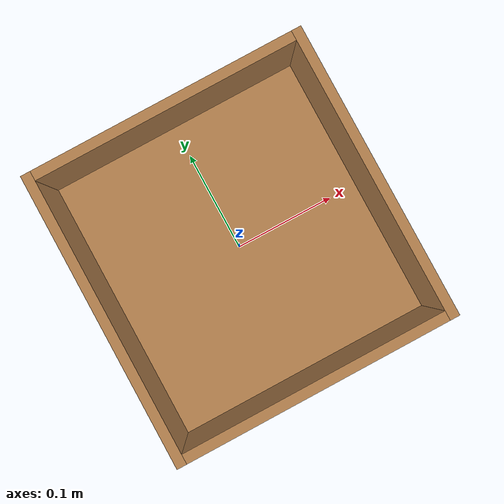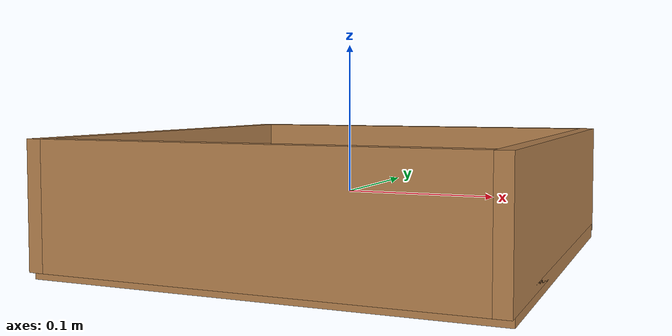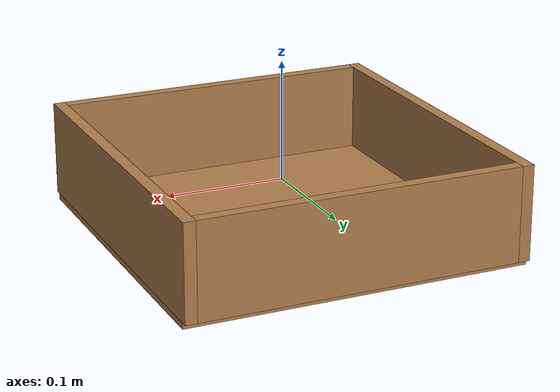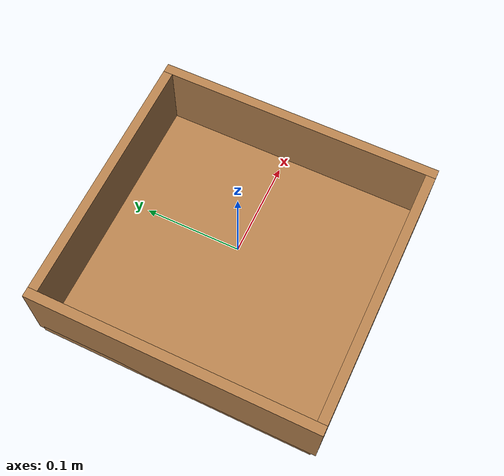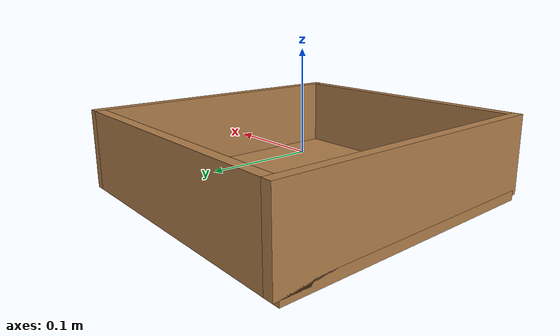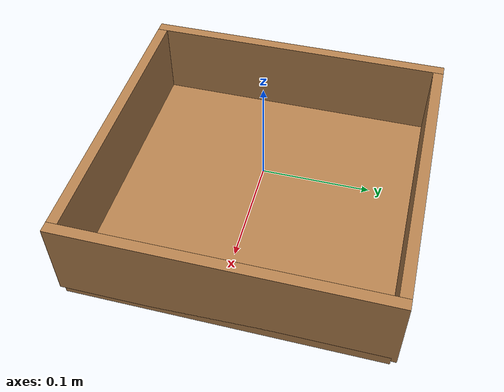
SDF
<?xml version="1.0"?>
<sdf version="1.4">
    <model name="my_boxx">

      <link name="box_1">
              <pose>0 0.145 0 0 0 0</pose>

                  <collision name='collision'>
                    <geometry>
                      <box>
                        <size>0.27 0.01 0.08</size>
                      </box>
                    </geometry>
                  </collision>

                  <visual name='visual'>
                    <geometry>
                      <box>
                        <size>0.27 0.01 0.08</size>
                      </box>
                    </geometry>
                  <material>
                    <script>
                      <uri>file://media/materials/scripts/gazebo.material</uri>
                      <name>Gazebo/Wood</name>
                    </script>
                  </material>
                  </visual>
       </link>

       <link name="box_2">
               <pose>0 -0.145 0 0 0 0</pose>

                   <collision name='collision'>
                     <geometry>
                       <box>
                         <size>0.27 0.01 0.08</size>
                       </box>
                     </geometry>
                   </collision>

                   <visual name='visual'>
                     <geometry>
                       <box>
                         <size>0.27 0.01 0.08</size>
                       </box>
                     </geometry>
                   <material>
                     <script>
                       <uri>file://media/materials/scripts/gazebo.material</uri>
                       <name>Gazebo/Wood</name>
                     </script>
                   </material>
                   </visual>
        </link>

        <link name="box_3">
                <pose>0.14 0 0 0 0 0</pose>

                    <collision name='collision'>
                      <geometry>
                        <box>
                          <size>0.01 0.30 0.08</size>
                        </box>
                      </geometry>
                    </collision>

                    <visual name='visual'>
                      <geometry>
                        <box>
                          <size>0.01 0.30 0.08</size>
                        </box>
                      </geometry>
                    <material>
                      <script>
                        <uri>file://media/materials/scripts/gazebo.material</uri>
                        <name>Gazebo/Wood</name>
                      </script>
                    </material>
                    </visual>
         </link>

         <link name="box_4">
                 <pose>-0.14 0 0 0 0 0</pose>

                     <collision name='collision'>
                       <geometry>
                         <box>
                           <size>0.01 0.30 0.08</size>
                         </box>
                       </geometry>
                     </collision>

                     <visual name='visual'>
                       <geometry>
                         <box>
                           <size>0.01 0.30 0.08</size>
                         </box>
                       </geometry>
                     <material>
                       <script>
                         <uri>file://media/materials/scripts/gazebo.material</uri>
                         <name>Gazebo/Wood</name>
                       </script>
                     </material>
                     </visual>
          </link>

          <link name="box_5">
                  <pose>0 0 -0.04 0 0 0</pose>

                      <collision name='collision'>
                        <geometry>
                          <box>
                            <size>0.29 0.29 0.01</size>
                          </box>
                        </geometry>
                      </collision>

                      <visual name='visual'>
                        <geometry>
                          <box>
                            <size>0.29 0.29 0.01</size>
                          </box>
                        </geometry>
                      <material>
                        <script>
                          <uri>file://media/materials/scripts/gazebo.material</uri>
                          <name>Gazebo/Wood</name>
                        </script>
                      </material>
                      </visual>
           </link>

           <joint type="fixed" name="art_fija_6">
             <pose>0 0 0 0 0 0</pose>
             <child>box_1</child>
             <parent>box_5</parent>
           </joint>

           <joint type="fixed" name="art_fija_3">
             <pose>0 0 0 0 0 0</pose>
             <child>box_2</child>
             <parent>box_5</parent>
           </joint>

           <joint type="fixed" name="art_fija_4">
             <pose>0 0 0 0 0 0</pose>
             <child>box_3</child>
             <parent>box_5</parent>
           </joint>

           <joint type="fixed" name="art_fija_5">
             <pose>0 0 0 0 0 0</pose>
             <child>box_4</child>
             <parent>box_5</parent>
           </joint>

        </model>
    </sdf>
